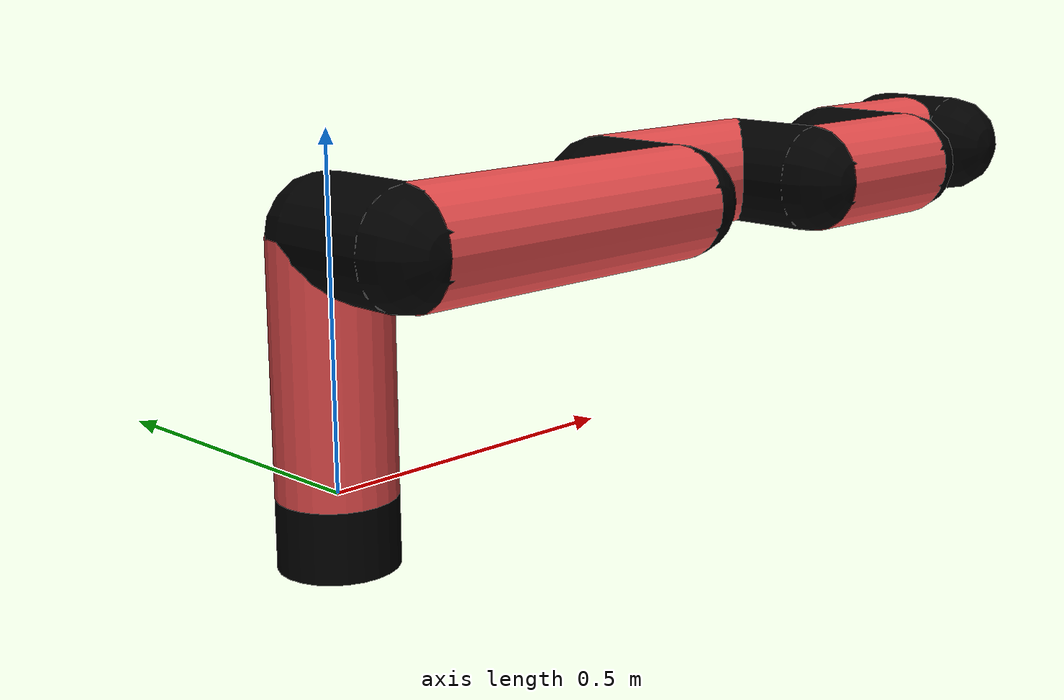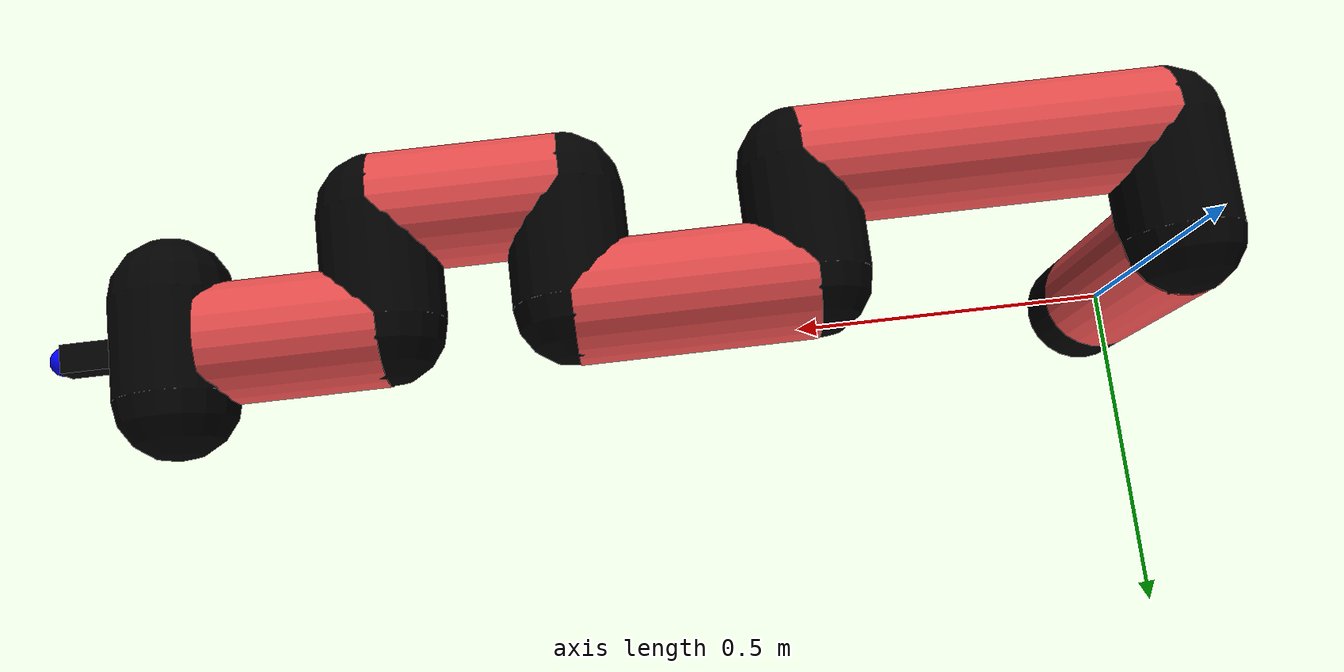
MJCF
<mujoco model="manipulator">
		<compiler angle="degree" coordinate="local" inertiafromgeom="auto" meshdir="meshes/"/>
		<option gravity="0 0 0" integrator="RK4" iterations="30" timestep="0.01"/>

		<default>
		<joint armature="1" limited="true" stiffness="10" damping="15" frictionloss="5.0"/>
		<geom conaffinity="1" condim="3" contype="1" friction=".5 .1 .1" margin="0.002"/>
		<motor ctrllimited="true"/>
		<position ctrllimited="true"/>
		</default>

		<asset>
		<texture builtin="gradient" height="100" rgb1="1.0 1.0 1.0" rgb2="1.0 1.0 1.0" type="skybox" width="100"/>
		<texture builtin="flat" height="32" name="arm_tex" rgb1="0.9 0.3 0.3" type="2d" width="32"/>
		<texture builtin="flat" height="32" name="gripper_tex" rgb1="0.0 0.0 0.0" type="cube" width="32"/>

		<material name="arm_mat" shininess="0.1" specular="0.1" texture="arm_tex"/>
		<material name="gripper_mat" shininess="1" specular="1" texture="gripper_tex"/>
		</asset>

		<worldbody>
		<light cutoff="45" diffuse=".8 .8 .8" dir="0 0.16 -1" directional="false" name="light" pos="0 -2.0 8.0" specular="0.3 0.3 0.3"/>

		<body name="base_link" pos="0 0 -0.1">
		<geom fromto="0 0 0 0 0 0.1" material="arm_mat" name="base_link" rgba="0.0 0.0 0.0 1" size="0.085" type="cylinder"/>
		</body>

		<body name="l1" pos="0 0 0">
<geom fromto="0 0 0 0 0 0.36" material="arm_mat" name="l1" rgba="0.9 0.3 0.3 1" size="0.085" type="cylinder"/>
<geom fromto="0 0 0.36 0 -0.16 0.36" material="arm_mat" name="l1_ex" rgba="0.0 0.0 0.0 1" size="0.085" type="capsule"/>
<joint axis="0 0 1" name="j1" pos="0 0 0" range="-90 90" damping="23.07" frictionloss="11.6"/>

<body name="l2" pos="0 -0.16 0.36">
<geom fromto="0 0 0 0.52 0 0" material="arm_mat" name="l2" rgba="0.9 0.3 0.3 1" size="0.085" type="cylinder"/>
<geom fromto="0.52 0 0 0.52 0.16 0" material="arm_mat" name="l2_ex" rgba="0.0 0.0 0.0 1" size="0.085" type="capsule"/>
<joint axis="0.18 1.12 0.03" name="j2" pos="0 0 0" range="-90 60" damping="25.07" frictionloss="11.84"/>

<body name="l3" pos="0.52 0.16 0">
<geom fromto="0 0 0 0.33 0 0" material="arm_mat" name="l3" rgba="0.9 0.3 0.3 1" size="0.085" type="cylinder"/>
<geom fromto="0.33 0 0 0.33 -0.16 0" material="arm_mat" name="l3_ex" rgba="0.0 0.0 0.0 1" size="0.085" type="capsule"/>
<joint axis="-0.18 0.78 -0.19" name="j3" pos="0 0 0" range="-30 60" damping="30.13" frictionloss="9.39"/>

<body name="l4" pos="0.33 -0.16 0">
<geom fromto="0 0 0 0.26 0 0" material="arm_mat" name="l4" rgba="0.9 0.3 0.3 1" size="0.085" type="cylinder"/>
<geom fromto="0.26 0 0 0.26 0.16 0" material="arm_mat" name="l4_ex" rgba="0.0 0.0 0.0 1" size="0.085" type="capsule"/>
<joint axis="-0.23 0.8 -0.14" name="j4" pos="0 0 0" range="-30 60" damping="32.61" frictionloss="9.66"/>

<body name="l5" pos="0.26 0.16 0">
<geom fromto="0 0 0 0.24 0 0" material="arm_mat" name="l5" rgba="0.9 0.3 0.3 1" size="0.085" type="cylinder"/>
<joint axis="0.11 1.03 -0.24" name="j5" pos="0 0 0" range="-30 60" damping="32.49" frictionloss="8.98"/>

<body name="gripper" pos="0.24 0 0">
<geom fromto="0.05 -0.07 0 0.05 0.07 0" material="gripper_mat" name="gripper" rgba="0.0 0.0 0.0 1" size="0.085" type="capsule"/><joint axis="1 0 0" name="j6" pos="0 0 0" range="-90 90" damping="15" frictionloss="5.0"/><body name="finger" pos="0.1 0 0">
<geom fromto="0 0.0 0 0.1 0.0 0" material="gripper_mat" name="finger" rgba="0.0 0.0 0.0 1" size="0.020 0.06 0.06" type="box"/>
</body>
<site name="current" pos="0.2 0. 0.0" rgba="0. 0. 1.0 1" size="0.02" type="sphere"/>
</body>
</body>
</body>
</body>
</body>
</body>
</worldbody>
<actuator>
<motor ctrllimited="true" ctrlrange="-1.0 1.0" joint="j1" gear="98.49"/>
<motor ctrllimited="true" ctrlrange="-1.0 1.0" joint="j2" gear="98.95"/>
<motor ctrllimited="true" ctrlrange="-1.0 1.0" joint="j3" gear="73.88"/>
<motor ctrllimited="true" ctrlrange="-1.0 1.0" joint="j4" gear="67.76"/>
<motor ctrllimited="true" ctrlrange="-1.0 1.0" joint="j5" gear="79.99"/>
<motor ctrllimited="true" ctrlrange="-1.0 1.0" joint="j6" gear="80"/>
</actuator>
</mujoco>
